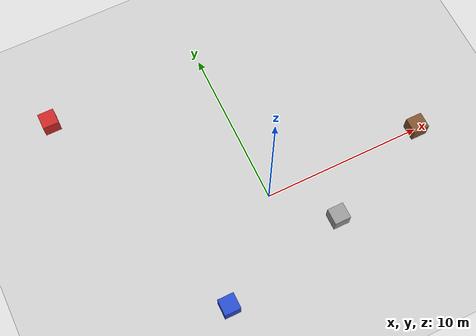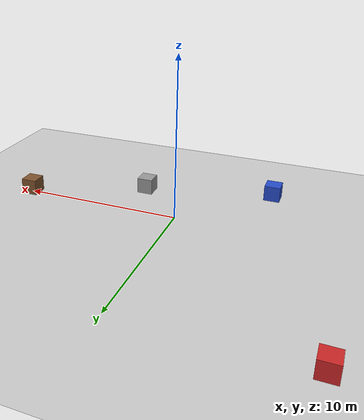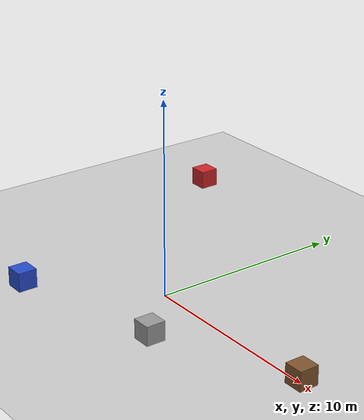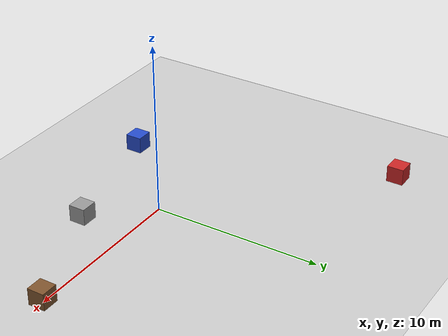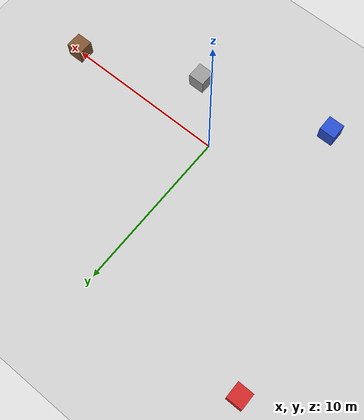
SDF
<sdf version="1.7">
 <world name="default">
  <light name="sun" type="directional">
   <pose>0 0 10 0 -0 0</pose>
   <diffuse>0.8 0.8 0.8 1</diffuse>
   <specular>0.2 0.2 0.2 1</specular>
   <attenuation>
    <range>1000</range>
    <constant>0.9</constant>
    <linear>0.01</linear>
    <quadratic>0.001</quadratic>
   </attenuation>
   <direction>-0.5 0.1 -0.9</direction>
   <spot><inner_angle>0</inner_angle><outer_angle>0</outer_angle><falloff>0</falloff></spot>
  </light>
  <model name="ground_plane">
   <static>1</static>
   <link name="link">
    <collision name="collision">
     <geometry><plane><normal>0 0 1</normal><size>100 100</size></plane></geometry>
     <surface><friction><ode><mu>100</mu><mu2>50</mu2></ode></friction></surface>
    </collision>
    <visual name="visual">
     <cast_shadows>0</cast_shadows>
     <geometry><plane><normal>0 0 1</normal><size>100 100</size></plane></geometry>
     <material>
      <script><uri>file://media/materials/scripts/gazebo.material</uri><name>Gazebo/Grey</name></script>
     </material>
    </visual>
   </link>
  </model>
  <gravity>0 0 -9.8</gravity>
  <magnetic_field>6e-06 2.3e-05 -4.2e-05</magnetic_field>
  <atmosphere type="adiabatic"/>
  <physics type="ode">
   <max_step_size>0.001</max_step_size>
   <real_time_factor>1</real_time_factor>
   <real_time_update_rate>1000</real_time_update_rate>
  </physics>
  <scene><ambient>0.4 0.4 0.4 1</ambient><background>0.7 0.7 0.7 1</background><shadows>1</shadows></scene>
  <spherical_coordinates>
   <surface_model>EARTH_WGS84</surface_model>
   <latitude_deg>0</latitude_deg>
   <longitude_deg>0</longitude_deg>
   <elevation>0</elevation>
   <heading_deg>0</heading_deg>
  </spherical_coordinates>
  <model name="bicycle">
   <pose>-10 10 0.499995 0 -1e-05 0</pose>
   <link name="link">
    <inertial>
     <mass>1</mass>
     <inertia>
      <ixx>0.166667</ixx>
      <ixy>0</ixy>
      <ixz>0</ixz>
      <iyy>0.166667</iyy>
      <iyz>0</iyz>
      <izz>0.166667</izz>
     </inertia>
    </inertial>
    <collision name="collision"><geometry><box><size>1 1 1</size></box></geometry></collision>
    <visual name="visual">
     <geometry><box><size>1 1 1</size></box></geometry>
     <material>
      <script><name>Gazebo/Red</name><uri>file://media/materials/scripts/gazebo.material</uri></script>
     </material>
    </visual>
   </link>
  </model>
  <model name="car">
   <pose>-5 -5 0.499995 1e-05 -0 0</pose>
   <link name="link">
    <inertial>
     <mass>1</mass>
     <inertia>
      <ixx>0.166667</ixx>
      <ixy>0</ixy>
      <ixz>0</ixz>
      <iyy>0.166667</iyy>
      <iyz>0</iyz>
      <izz>0.166667</izz>
     </inertia>
    </inertial>
    <collision name="collision"><geometry><box><size>1 1 1</size></box></geometry></collision>
    <visual name="visual">
     <geometry><box><size>1 1 1</size></box></geometry>
     <material>
      <script><name>Gazebo/Blue</name><uri>file://media/materials/scripts/gazebo.material</uri></script>
     </material>
    </visual>
   </link>
  </model>
  <model name="cat">
   <pose>3 -3 0.499997 4e-06 4e-06 -0</pose>
   <link name="link">
    <inertial>
     <mass>1</mass>
     <inertia><ixx>0.145833</ixx><ixy>0</ixy><ixz>0</ixz><iyy>0.145833</iyy><iyz>0</iyz><izz>0.125</izz></inertia>
    </inertial>
    <collision name="collision"><geometry><box><size>1 1 1</size></box></geometry></collision>
    <visual name="visual">
     <geometry><box><size>1 1 1</size></box></geometry>
     <material>
      <script><name>Gazebo/Grey</name><uri>file://media/materials/scripts/gazebo.material</uri></script>
     </material>
    </visual>
   </link>
  </model>
  <model name="dog">
   <pose>10 4e-06 0.499993 -4e-06 -4e-06 -0</pose>
   <link name="link">
    <inertial>
     <mass>1</mass>
     <inertia><ixx>0.145833</ixx><ixy>0</ixy><ixz>0</ixz><iyy>0.145833</iyy><iyz>0</iyz><izz>0.125</izz></inertia>
    </inertial>
    <collision name="collision"><geometry><box><size>1 1 1</size></box></geometry></collision>
    <visual name="visual">
     <geometry><box><size>1 1 1</size></box></geometry>
     <material>
      <script><name>Gazebo/Brown</name><uri>file://media/materials/scripts/gazebo.material</uri></script>
     </material>
    </visual>
   </link>
  </model>
 </world>
</sdf>
